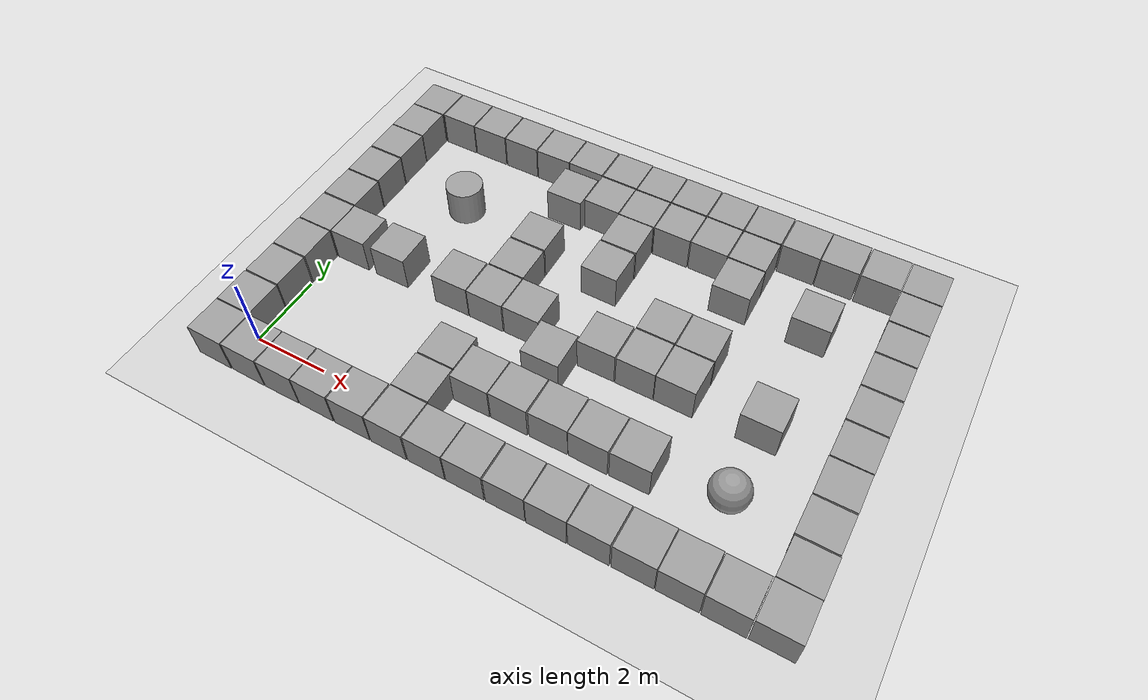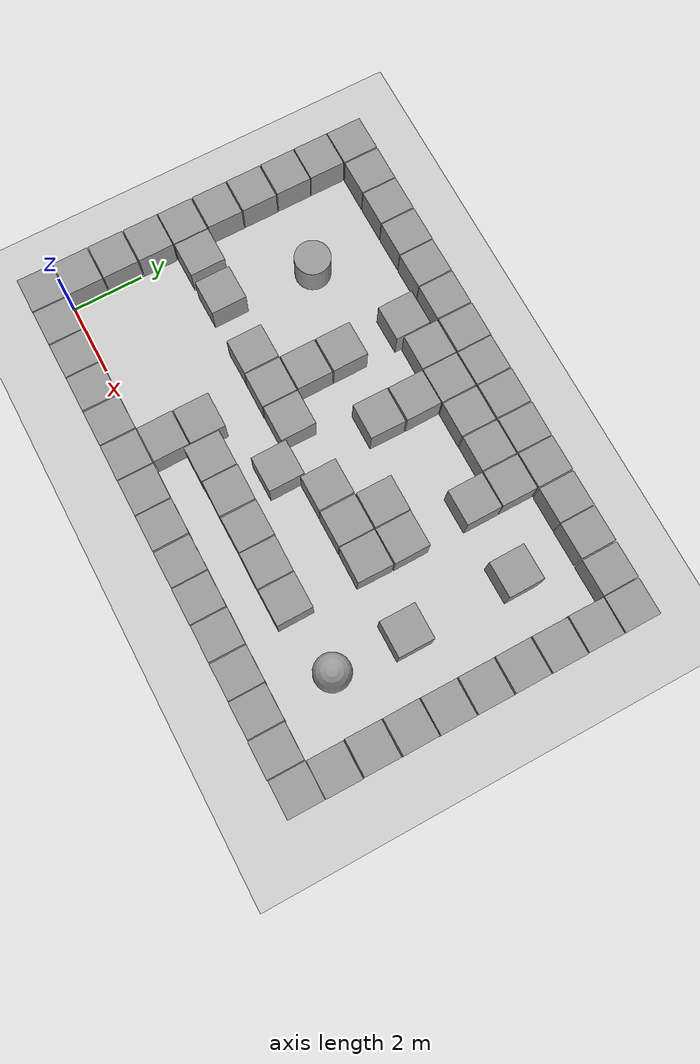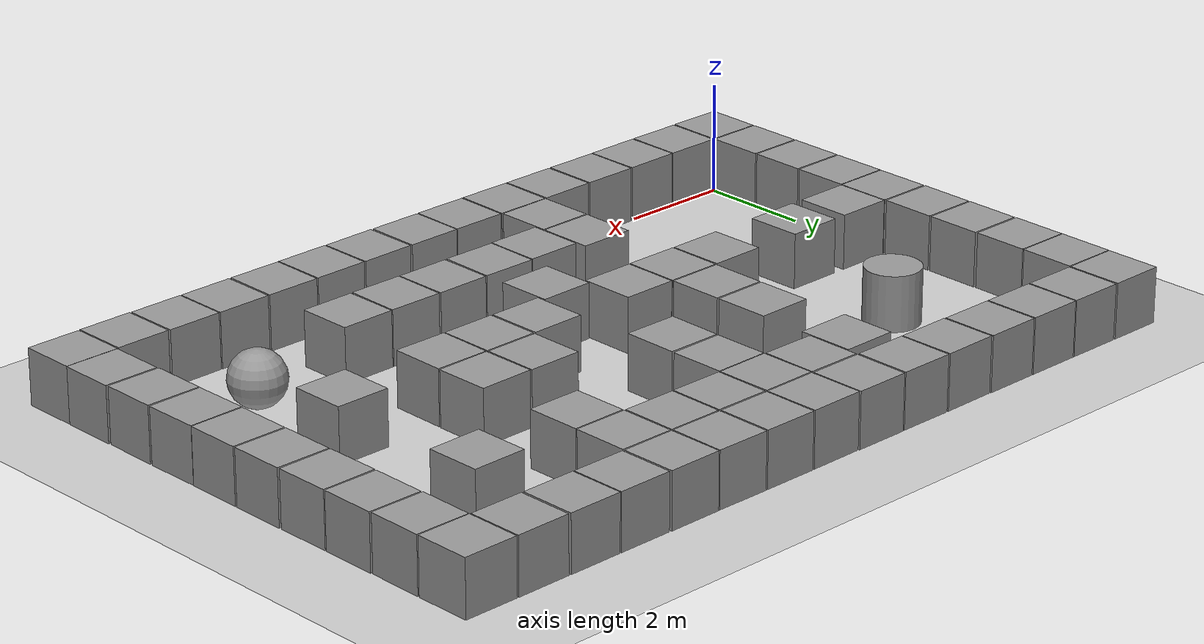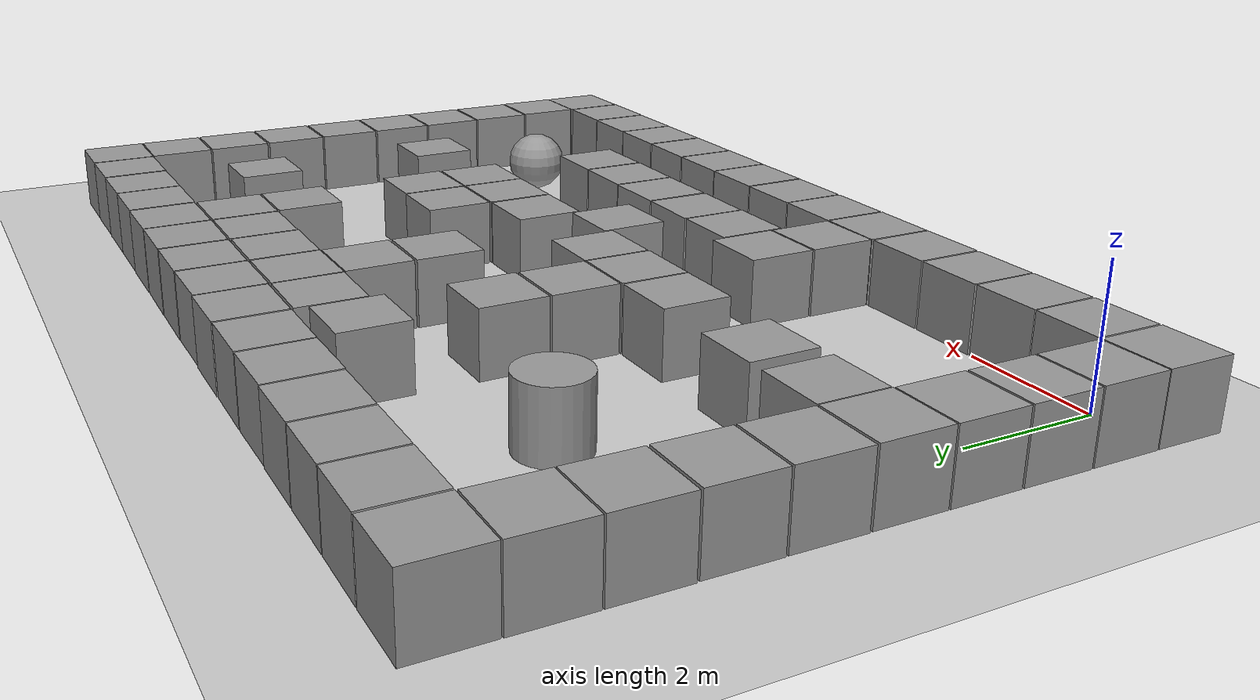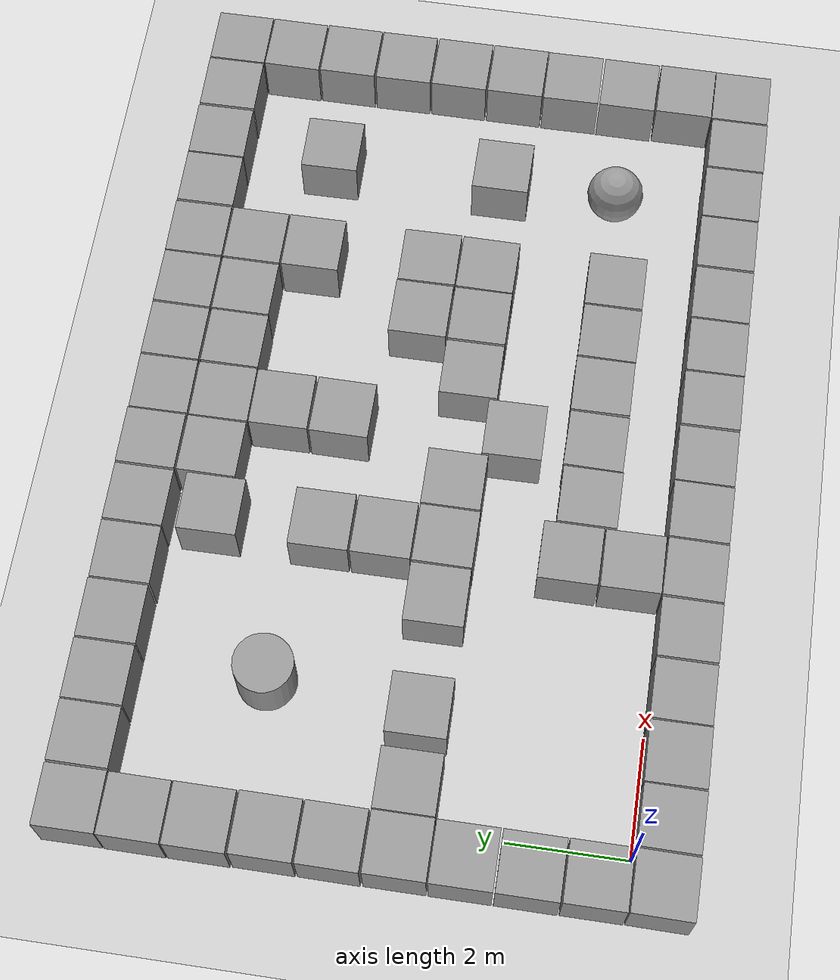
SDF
<?xml version="1.0"?>
<sdf version="1.6">
  <world name="corridor_trap">
    <include><uri>model://ground_plane</uri></include>
    <include><uri>model://sun</uri></include>
    <physics type="ode"><real_time_update_rate>1000.0</real_time_update_rate><max_step_size>0.001</max_step_size><real_time_factor>1</real_time_factor><ode><solver><type>quick</type><iters>150</iters><precon_iters>0</precon_iters><sor>1.400000</sor><use_dynamic_moi_rescaling>1</use_dynamic_moi_rescaling></solver><constraints><cfm>0.00001</cfm><erp>0.2</erp><contact_max_correcting_vel>2000.000000</contact_max_correcting_vel><contact_surface_layer>0.01000</contact_surface_layer></constraints></ode></physics>
    <scene><shadows>false</shadows></scene>
    <gui fullscreen="0"><camera name="user_camera"><pose>6.7 -5 12 0 0.95 1.5707</pose><view_controller>orbit</view_controller><projection_type>perspective</projection_type></camera></gui>
    <model name='unit_box_0'>
      <pose>-0.4945 -0.5043 0.5 0 0 -0.00998</pose>
      <link name='link'><inertial><mass>1</mass><inertia><ixx>0.166667</ixx><ixy>0</ixy><ixz>0</ixz><iyy>0.166667</iyy><iyz>0</iyz><izz>0.166667</izz></inertia></inertial>
        <collision name='collision'><geometry><box><size>1 1 1</size></box></geometry><max_contacts>10</max_contacts></collision>
        <visual name='visual'><geometry><box><size>1 1 1</size></box></geometry><material><script><uri>file://media/materials/scripts/gazebo.material</uri><name>Gazebo/Grey</name></script></material></visual>
      </link>
    </model>
    <model name='unit_box_1'>
      <pose>0.5360 -0.5038 0.5 0 0 -0.00795</pose>
      <link name='link'><inertial><mass>1</mass><inertia><ixx>0.166667</ixx><ixy>0</ixy><ixz>0</ixz><iyy>0.166667</iyy><iyz>0</iyz><izz>0.166667</izz></inertia></inertial>
        <collision name='collision'><geometry><box><size>1 1 1</size></box></geometry><max_contacts>10</max_contacts></collision>
        <visual name='visual'><geometry><box><size>1 1 1</size></box></geometry><material><script><uri>file://media/materials/scripts/gazebo.material</uri><name>Gazebo/Grey</name></script></material></visual>
      </link>
    </model>
    <model name='unit_box_2'>
      <pose>1.5618 -0.5019 0.5 0 0 0.00816</pose>
      <link name='link'><inertial><mass>1</mass><inertia><ixx>0.166667</ixx><ixy>0</ixy><ixz>0</ixz><iyy>0.166667</iyy><iyz>0</iyz><izz>0.166667</izz></inertia></inertial>
        <collision name='collision'><geometry><box><size>1 1 1</size></box></geometry><max_contacts>10</max_contacts></collision>
        <visual name='visual'><geometry><box><size>1 1 1</size></box></geometry><material><script><uri>file://media/materials/scripts/gazebo.material</uri><name>Gazebo/Grey</name></script></material></visual>
      </link>
    </model>
    <model name='unit_box_3'>
      <pose>2.5868 -0.4945 0.5 0 0 -0.00378</pose>
      <link name='link'><inertial><mass>1</mass><inertia><ixx>0.166667</ixx><ixy>0</ixy><ixz>0</ixz><iyy>0.166667</iyy><iyz>0</iyz><izz>0.166667</izz></inertia></inertial>
        <collision name='collision'><geometry><box><size>1 1 1</size></box></geometry><max_contacts>10</max_contacts></collision>
        <visual name='visual'><geometry><box><size>1 1 1</size></box></geometry><material><script><uri>file://media/materials/scripts/gazebo.material</uri><name>Gazebo/Grey</name></script></material></visual>
      </link>
    </model>
    <model name='unit_box_4'>
      <pose>3.6212 -0.4948 0.5 0 0 0.00388</pose>
      <link name='link'><inertial><mass>1</mass><inertia><ixx>0.166667</ixx><ixy>0</ixy><ixz>0</ixz><iyy>0.166667</iyy><iyz>0</iyz><izz>0.166667</izz></inertia></inertial>
        <collision name='collision'><geometry><box><size>1 1 1</size></box></geometry><max_contacts>10</max_contacts></collision>
        <visual name='visual'><geometry><box><size>1 1 1</size></box></geometry><material><script><uri>file://media/materials/scripts/gazebo.material</uri><name>Gazebo/Grey</name></script></material></visual>
      </link>
    </model>
    <model name='unit_box_5'>
      <pose>4.6551 -0.4975 0.5 0 0 -0.00946</pose>
      <link name='link'><inertial><mass>1</mass><inertia><ixx>0.166667</ixx><ixy>0</ixy><ixz>0</ixz><iyy>0.166667</iyy><iyz>0</iyz><izz>0.166667</izz></inertia></inertial>
        <collision name='collision'><geometry><box><size>1 1 1</size></box></geometry><max_contacts>10</max_contacts></collision>
        <visual name='visual'><geometry><box><size>1 1 1</size></box></geometry><material><script><uri>file://media/materials/scripts/gazebo.material</uri><name>Gazebo/Grey</name></script></material></visual>
      </link>
    </model>
    <model name='unit_box_6'>
      <pose>5.6846 -0.4989 0.5 0 0 -0.00397</pose>
      <link name='link'><inertial><mass>1</mass><inertia><ixx>0.166667</ixx><ixy>0</ixy><ixz>0</ixz><iyy>0.166667</iyy><iyz>0</iyz><izz>0.166667</izz></inertia></inertial>
        <collision name='collision'><geometry><box><size>1 1 1</size></box></geometry><max_contacts>10</max_contacts></collision>
        <visual name='visual'><geometry><box><size>1 1 1</size></box></geometry><material><script><uri>file://media/materials/scripts/gazebo.material</uri><name>Gazebo/Grey</name></script></material></visual>
      </link>
    </model>
    <model name='unit_box_7'>
      <pose>6.7063 -0.4958 0.5 0 0 0.00173</pose>
      <link name='link'><inertial><mass>1</mass><inertia><ixx>0.166667</ixx><ixy>0</ixy><ixz>0</ixz><iyy>0.166667</iyy><iyz>0</iyz><izz>0.166667</izz></inertia></inertial>
        <collision name='collision'><geometry><box><size>1 1 1</size></box></geometry><max_contacts>10</max_contacts></collision>
        <visual name='visual'><geometry><box><size>1 1 1</size></box></geometry><material><script><uri>file://media/materials/scripts/gazebo.material</uri><name>Gazebo/Grey</name></script></material></visual>
      </link>
    </model>
    <model name='unit_box_8'>
      <pose>7.7453 -0.4967 0.5 0 0 0.00966</pose>
      <link name='link'><inertial><mass>1</mass><inertia><ixx>0.166667</ixx><ixy>0</ixy><ixz>0</ixz><iyy>0.166667</iyy><iyz>0</iyz><izz>0.166667</izz></inertia></inertial>
        <collision name='collision'><geometry><box><size>1 1 1</size></box></geometry><max_contacts>10</max_contacts></collision>
        <visual name='visual'><geometry><box><size>1 1 1</size></box></geometry><material><script><uri>file://media/materials/scripts/gazebo.material</uri><name>Gazebo/Grey</name></script></material></visual>
      </link>
    </model>
    <model name='unit_box_9'>
      <pose>8.7708 -0.4976 0.5 0 0 0.00235</pose>
      <link name='link'><inertial><mass>1</mass><inertia><ixx>0.166667</ixx><ixy>0</ixy><ixz>0</ixz><iyy>0.166667</iyy><iyz>0</iyz><izz>0.166667</izz></inertia></inertial>
        <collision name='collision'><geometry><box><size>1 1 1</size></box></geometry><max_contacts>10</max_contacts></collision>
        <visual name='visual'><geometry><box><size>1 1 1</size></box></geometry><material><script><uri>file://media/materials/scripts/gazebo.material</uri><name>Gazebo/Grey</name></script></material></visual>
      </link>
    </model>
    <model name='unit_box_10'>
      <pose>9.7971 -0.4945 0.5 0 0 -0.00393</pose>
      <link name='link'><inertial><mass>1</mass><inertia><ixx>0.166667</ixx><ixy>0</ixy><ixz>0</ixz><iyy>0.166667</iyy><iyz>0</iyz><izz>0.166667</izz></inertia></inertial>
        <collision name='collision'><geometry><box><size>1 1 1</size></box></geometry><max_contacts>10</max_contacts></collision>
        <visual name='visual'><geometry><box><size>1 1 1</size></box></geometry><material><script><uri>file://media/materials/scripts/gazebo.material</uri><name>Gazebo/Grey</name></script></material></visual>
      </link>
    </model>
    <model name='unit_box_11'>
      <pose>10.8334 -0.4945 0.5 0 0 0.00316</pose>
      <link name='link'><inertial><mass>1</mass><inertia><ixx>0.166667</ixx><ixy>0</ixy><ixz>0</ixz><iyy>0.166667</iyy><iyz>0</iyz><izz>0.166667</izz></inertia></inertial>
        <collision name='collision'><geometry><box><size>1 1 1</size></box></geometry><max_contacts>10</max_contacts></collision>
        <visual name='visual'><geometry><box><size>1 1 1</size></box></geometry><material><script><uri>file://media/materials/scripts/gazebo.material</uri><name>Gazebo/Grey</name></script></material></visual>
      </link>
    </model>
    <model name='unit_box_12'>
      <pose>11.8557 -0.4961 0.5 0 0 0.00351</pose>
      <link name='link'><inertial><mass>1</mass><inertia><ixx>0.166667</ixx><ixy>0</ixy><ixz>0</ixz><iyy>0.166667</iyy><iyz>0</iyz><izz>0.166667</izz></inertia></inertial>
        <collision name='collision'><geometry><box><size>1 1 1</size></box></geometry><max_contacts>10</max_contacts></collision>
        <visual name='visual'><geometry><box><size>1 1 1</size></box></geometry><material><script><uri>file://media/materials/scripts/gazebo.material</uri><name>Gazebo/Grey</name></script></material></visual>
      </link>
    </model>
    <model name='unit_box_13'>
      <pose>12.8862 -0.5054 0.5 0 0 0.00067</pose>
      <link name='link'><inertial><mass>1</mass><inertia><ixx>0.166667</ixx><ixy>0</ixy><ixz>0</ixz><iyy>0.166667</iyy><iyz>0</iyz><izz>0.166667</izz></inertia></inertial>
        <collision name='collision'><geometry><box><size>1 1 1</size></box></geometry><max_contacts>10</max_contacts></collision>
        <visual name='visual'><geometry><box><size>1 1 1</size></box></geometry><material><script><uri>file://media/materials/scripts/gazebo.material</uri><name>Gazebo/Grey</name></script></material></visual>
      </link>
    </model>
    <model name='unit_box_14'>
      <pose>13.9144 -0.4949 0.5 0 0 0.00013</pose>
      <link name='link'><inertial><mass>1</mass><inertia><ixx>0.166667</ixx><ixy>0</ixy><ixz>0</ixz><iyy>0.166667</iyy><iyz>0</iyz><izz>0.166667</izz></inertia></inertial>
        <collision name='collision'><geometry><box><size>1 1 1</size></box></geometry><max_contacts>10</max_contacts></collision>
        <visual name='visual'><geometry><box><size>1 1 1</size></box></geometry><material><script><uri>file://media/materials/scripts/gazebo.material</uri><name>Gazebo/Grey</name></script></material></visual>
      </link>
    </model>
    <model name='unit_box_15'>
      <pose>-0.4998 8.7689 0.5 0 0 0.00337</pose>
      <link name='link'><inertial><mass>1</mass><inertia><ixx>0.166667</ixx><ixy>0</ixy><ixz>0</ixz><iyy>0.166667</iyy><iyz>0</iyz><izz>0.166667</izz></inertia></inertial>
        <collision name='collision'><geometry><box><size>1 1 1</size></box></geometry><max_contacts>10</max_contacts></collision>
        <visual name='visual'><geometry><box><size>1 1 1</size></box></geometry><material><script><uri>file://media/materials/scripts/gazebo.material</uri><name>Gazebo/Grey</name></script></material></visual>
      </link>
    </model>
    <model name='unit_box_16'>
      <pose>0.5350 8.7677 0.5 0 0 -0.00264</pose>
      <link name='link'><inertial><mass>1</mass><inertia><ixx>0.166667</ixx><ixy>0</ixy><ixz>0</ixz><iyy>0.166667</iyy><iyz>0</iyz><izz>0.166667</izz></inertia></inertial>
        <collision name='collision'><geometry><box><size>1 1 1</size></box></geometry><max_contacts>10</max_contacts></collision>
        <visual name='visual'><geometry><box><size>1 1 1</size></box></geometry><material><script><uri>file://media/materials/scripts/gazebo.material</uri><name>Gazebo/Grey</name></script></material></visual>
      </link>
    </model>
    <model name='unit_box_17'>
      <pose>1.5610 8.7676 0.5 0 0 0.00200</pose>
      <link name='link'><inertial><mass>1</mass><inertia><ixx>0.166667</ixx><ixy>0</ixy><ixz>0</ixz><iyy>0.166667</iyy><iyz>0</iyz><izz>0.166667</izz></inertia></inertial>
        <collision name='collision'><geometry><box><size>1 1 1</size></box></geometry><max_contacts>10</max_contacts></collision>
        <visual name='visual'><geometry><box><size>1 1 1</size></box></geometry><material><script><uri>file://media/materials/scripts/gazebo.material</uri><name>Gazebo/Grey</name></script></material></visual>
      </link>
    </model>
    <model name='unit_box_18'>
      <pose>2.5905 8.7692 0.5 0 0 0.00363</pose>
      <link name='link'><inertial><mass>1</mass><inertia><ixx>0.166667</ixx><ixy>0</ixy><ixz>0</ixz><iyy>0.166667</iyy><iyz>0</iyz><izz>0.166667</izz></inertia></inertial>
        <collision name='collision'><geometry><box><size>1 1 1</size></box></geometry><max_contacts>10</max_contacts></collision>
        <visual name='visual'><geometry><box><size>1 1 1</size></box></geometry><material><script><uri>file://media/materials/scripts/gazebo.material</uri><name>Gazebo/Grey</name></script></material></visual>
      </link>
    </model>
    <model name='unit_box_19'>
      <pose>3.6203 8.7651 0.5 0 0 0.01040</pose>
      <link name='link'><inertial><mass>1</mass><inertia><ixx>0.166667</ixx><ixy>0</ixy><ixz>0</ixz><iyy>0.166667</iyy><iyz>0</iyz><izz>0.166667</izz></inertia></inertial>
        <collision name='collision'><geometry><box><size>1 1 1</size></box></geometry><max_contacts>10</max_contacts></collision>
        <visual name='visual'><geometry><box><size>1 1 1</size></box></geometry><material><script><uri>file://media/materials/scripts/gazebo.material</uri><name>Gazebo/Grey</name></script></material></visual>
      </link>
    </model>
    <model name='unit_box_20'>
      <pose>4.6483 8.7692 0.5 0 0 -0.00204</pose>
      <link name='link'><inertial><mass>1</mass><inertia><ixx>0.166667</ixx><ixy>0</ixy><ixz>0</ixz><iyy>0.166667</iyy><iyz>0</iyz><izz>0.166667</izz></inertia></inertial>
        <collision name='collision'><geometry><box><size>1 1 1</size></box></geometry><max_contacts>10</max_contacts></collision>
        <visual name='visual'><geometry><box><size>1 1 1</size></box></geometry><material><script><uri>file://media/materials/scripts/gazebo.material</uri><name>Gazebo/Grey</name></script></material></visual>
      </link>
    </model>
    <model name='unit_box_21'>
      <pose>5.6852 8.7754 0.5 0 0 0.00025</pose>
      <link name='link'><inertial><mass>1</mass><inertia><ixx>0.166667</ixx><ixy>0</ixy><ixz>0</ixz><iyy>0.166667</iyy><iyz>0</iyz><izz>0.166667</izz></inertia></inertial>
        <collision name='collision'><geometry><box><size>1 1 1</size></box></geometry><max_contacts>10</max_contacts></collision>
        <visual name='visual'><geometry><box><size>1 1 1</size></box></geometry><material><script><uri>file://media/materials/scripts/gazebo.material</uri><name>Gazebo/Grey</name></script></material></visual>
      </link>
    </model>
    <model name='unit_box_22'>
      <pose>6.7088 8.7652 0.5 0 0 0.00828</pose>
      <link name='link'><inertial><mass>1</mass><inertia><ixx>0.166667</ixx><ixy>0</ixy><ixz>0</ixz><iyy>0.166667</iyy><iyz>0</iyz><izz>0.166667</izz></inertia></inertial>
        <collision name='collision'><geometry><box><size>1 1 1</size></box></geometry><max_contacts>10</max_contacts></collision>
        <visual name='visual'><geometry><box><size>1 1 1</size></box></geometry><material><script><uri>file://media/materials/scripts/gazebo.material</uri><name>Gazebo/Grey</name></script></material></visual>
      </link>
    </model>
    <model name='unit_box_23'>
      <pose>7.7361 8.7706 0.5 0 0 -0.00316</pose>
      <link name='link'><inertial><mass>1</mass><inertia><ixx>0.166667</ixx><ixy>0</ixy><ixz>0</ixz><iyy>0.166667</iyy><iyz>0</iyz><izz>0.166667</izz></inertia></inertial>
        <collision name='collision'><geometry><box><size>1 1 1</size></box></geometry><max_contacts>10</max_contacts></collision>
        <visual name='visual'><geometry><box><size>1 1 1</size></box></geometry><material><script><uri>file://media/materials/scripts/gazebo.material</uri><name>Gazebo/Grey</name></script></material></visual>
      </link>
    </model>
    <model name='unit_box_24'>
      <pose>8.7679 8.7683 0.5 0 0 -0.00647</pose>
      <link name='link'><inertial><mass>1</mass><inertia><ixx>0.166667</ixx><ixy>0</ixy><ixz>0</ixz><iyy>0.166667</iyy><iyz>0</iyz><izz>0.166667</izz></inertia></inertial>
        <collision name='collision'><geometry><box><size>1 1 1</size></box></geometry><max_contacts>10</max_contacts></collision>
        <visual name='visual'><geometry><box><size>1 1 1</size></box></geometry><material><script><uri>file://media/materials/scripts/gazebo.material</uri><name>Gazebo/Grey</name></script></material></visual>
      </link>
    </model>
    <model name='unit_box_25'>
      <pose>9.7944 8.7704 0.5 0 0 0.00620</pose>
      <link name='link'><inertial><mass>1</mass><inertia><ixx>0.166667</ixx><ixy>0</ixy><ixz>0</ixz><iyy>0.166667</iyy><iyz>0</iyz><izz>0.166667</izz></inertia></inertial>
        <collision name='collision'><geometry><box><size>1 1 1</size></box></geometry><max_contacts>10</max_contacts></collision>
        <visual name='visual'><geometry><box><size>1 1 1</size></box></geometry><material><script><uri>file://media/materials/scripts/gazebo.material</uri><name>Gazebo/Grey</name></script></material></visual>
      </link>
    </model>
    <model name='unit_box_26'>
      <pose>10.8318 8.7664 0.5 0 0 0.00406</pose>
      <link name='link'><inertial><mass>1</mass><inertia><ixx>0.166667</ixx><ixy>0</ixy><ixz>0</ixz><iyy>0.166667</iyy><iyz>0</iyz><izz>0.166667</izz></inertia></inertial>
        <collision name='collision'><geometry><box><size>1 1 1</size></box></geometry><max_contacts>10</max_contacts></collision>
        <visual name='visual'><geometry><box><size>1 1 1</size></box></geometry><material><script><uri>file://media/materials/scripts/gazebo.material</uri><name>Gazebo/Grey</name></script></material></visual>
      </link>
    </model>
    <model name='unit_box_27'>
      <pose>11.8546 8.7689 0.5 0 0 0.00687</pose>
      <link name='link'><inertial><mass>1</mass><inertia><ixx>0.166667</ixx><ixy>0</ixy><ixz>0</ixz><iyy>0.166667</iyy><iyz>0</iyz><izz>0.166667</izz></inertia></inertial>
        <collision name='collision'><geometry><box><size>1 1 1</size></box></geometry><max_contacts>10</max_contacts></collision>
        <visual name='visual'><geometry><box><size>1 1 1</size></box></geometry><material><script><uri>file://media/materials/scripts/gazebo.material</uri><name>Gazebo/Grey</name></script></material></visual>
      </link>
    </model>
    <model name='unit_box_28'>
      <pose>12.8951 8.7695 0.5 0 0 0.00726</pose>
      <link name='link'><inertial><mass>1</mass><inertia><ixx>0.166667</ixx><ixy>0</ixy><ixz>0</ixz><iyy>0.166667</iyy><iyz>0</iyz><izz>0.166667</izz></inertia></inertial>
        <collision name='collision'><geometry><box><size>1 1 1</size></box></geometry><max_contacts>10</max_contacts></collision>
        <visual name='visual'><geometry><box><size>1 1 1</size></box></geometry><material><script><uri>file://media/materials/scripts/gazebo.material</uri><name>Gazebo/Grey</name></script></material></visual>
      </link>
    </model>
    <model name='unit_box_29'>
      <pose>13.9200 8.7703 0.5 0 0 0.00177</pose>
      <link name='link'><inertial><mass>1</mass><inertia><ixx>0.166667</ixx><ixy>0</ixy><ixz>0</ixz><iyy>0.166667</iyy><iyz>0</iyz><izz>0.166667</izz></inertia></inertial>
        <collision name='collision'><geometry><box><size>1 1 1</size></box></geometry><max_contacts>10</max_contacts></collision>
        <visual name='visual'><geometry><box><size>1 1 1</size></box></geometry><material><script><uri>file://media/materials/scripts/gazebo.material</uri><name>Gazebo/Grey</name></script></material></visual>
      </link>
    </model>
    <model name='unit_box_30'>
      <pose>-0.4941 0.5229 0.5 0 0 -0.00056</pose>
      <link name='link'><inertial><mass>1</mass><inertia><ixx>0.166667</ixx><ixy>0</ixy><ixz>0</ixz><iyy>0.166667</iyy><iyz>0</iyz><izz>0.166667</izz></inertia></inertial>
        <collision name='collision'><geometry><box><size>1 1 1</size></box></geometry><max_contacts>10</max_contacts></collision>
        <visual name='visual'><geometry><box><size>1 1 1</size></box></geometry><material><script><uri>file://media/materials/scripts/gazebo.material</uri><name>Gazebo/Grey</name></script></material></visual>
      </link>
    </model>
    <model name='unit_box_31'>
      <pose>-0.4973 1.5546 0.5 0 0 -0.00306</pose>
      <link name='link'><inertial><mass>1</mass><inertia><ixx>0.166667</ixx><ixy>0</ixy><ixz>0</ixz><iyy>0.166667</iyy><iyz>0</iyz><izz>0.166667</izz></inertia></inertial>
        <collision name='collision'><geometry><box><size>1 1 1</size></box></geometry><max_contacts>10</max_contacts></collision>
        <visual name='visual'><geometry><box><size>1 1 1</size></box></geometry><material><script><uri>file://media/materials/scripts/gazebo.material</uri><name>Gazebo/Grey</name></script></material></visual>
      </link>
    </model>
    <model name='unit_box_32'>
      <pose>-0.4966 2.5896 0.5 0 0 0.00227</pose>
      <link name='link'><inertial><mass>1</mass><inertia><ixx>0.166667</ixx><ixy>0</ixy><ixz>0</ixz><iyy>0.166667</iyy><iyz>0</iyz><izz>0.166667</izz></inertia></inertial>
        <collision name='collision'><geometry><box><size>1 1 1</size></box></geometry><max_contacts>10</max_contacts></collision>
        <visual name='visual'><geometry><box><size>1 1 1</size></box></geometry><material><script><uri>file://media/materials/scripts/gazebo.material</uri><name>Gazebo/Grey</name></script></material></visual>
      </link>
    </model>
    <model name='unit_box_33'>
      <pose>-0.4947 3.6128 0.5 0 0 0.00000</pose>
      <link name='link'><inertial><mass>1</mass><inertia><ixx>0.166667</ixx><ixy>0</ixy><ixz>0</ixz><iyy>0.166667</iyy><iyz>0</iyz><izz>0.166667</izz></inertia></inertial>
        <collision name='collision'><geometry><box><size>1 1 1</size></box></geometry><max_contacts>10</max_contacts></collision>
        <visual name='visual'><geometry><box><size>1 1 1</size></box></geometry><material><script><uri>file://media/materials/scripts/gazebo.material</uri><name>Gazebo/Grey</name></script></material></visual>
      </link>
    </model>
    <model name='unit_box_34'>
      <pose>-0.4984 4.6495 0.5 0 0 -0.00688</pose>
      <link name='link'><inertial><mass>1</mass><inertia><ixx>0.166667</ixx><ixy>0</ixy><ixz>0</ixz><iyy>0.166667</iyy><iyz>0</iyz><izz>0.166667</izz></inertia></inertial>
        <collision name='collision'><geometry><box><size>1 1 1</size></box></geometry><max_contacts>10</max_contacts></collision>
        <visual name='visual'><geometry><box><size>1 1 1</size></box></geometry><material><script><uri>file://media/materials/scripts/gazebo.material</uri><name>Gazebo/Grey</name></script></material></visual>
      </link>
    </model>
    <model name='unit_box_35'>
      <pose>-0.4977 5.6835 0.5 0 0 -0.00484</pose>
      <link name='link'><inertial><mass>1</mass><inertia><ixx>0.166667</ixx><ixy>0</ixy><ixz>0</ixz><iyy>0.166667</iyy><iyz>0</iyz><izz>0.166667</izz></inertia></inertial>
        <collision name='collision'><geometry><box><size>1 1 1</size></box></geometry><max_contacts>10</max_contacts></collision>
        <visual name='visual'><geometry><box><size>1 1 1</size></box></geometry><material><script><uri>file://media/materials/scripts/gazebo.material</uri><name>Gazebo/Grey</name></script></material></visual>
      </link>
    </model>
    <model name='unit_box_36'>
      <pose>-0.5055 6.7227 0.5 0 0 -0.00309</pose>
      <link name='link'><inertial><mass>1</mass><inertia><ixx>0.166667</ixx><ixy>0</ixy><ixz>0</ixz><iyy>0.166667</iyy><iyz>0</iyz><izz>0.166667</izz></inertia></inertial>
        <collision name='collision'><geometry><box><size>1 1 1</size></box></geometry><max_contacts>10</max_contacts></collision>
        <visual name='visual'><geometry><box><size>1 1 1</size></box></geometry><material><script><uri>file://media/materials/scripts/gazebo.material</uri><name>Gazebo/Grey</name></script></material></visual>
      </link>
    </model>
    <model name='unit_box_37'>
      <pose>-0.5046 7.7466 0.5 0 0 -0.00513</pose>
      <link name='link'><inertial><mass>1</mass><inertia><ixx>0.166667</ixx><ixy>0</ixy><ixz>0</ixz><iyy>0.166667</iyy><iyz>0</iyz><izz>0.166667</izz></inertia></inertial>
        <collision name='collision'><geometry><box><size>1 1 1</size></box></geometry><max_contacts>10</max_contacts></collision>
        <visual name='visual'><geometry><box><size>1 1 1</size></box></geometry><material><script><uri>file://media/materials/scripts/gazebo.material</uri><name>Gazebo/Grey</name></script></material></visual>
      </link>
    </model>
    <model name='unit_box_38'>
      <pose>13.9244 0.5162 0.5 0 0 -0.00468</pose>
      <link name='link'><inertial><mass>1</mass><inertia><ixx>0.166667</ixx><ixy>0</ixy><ixz>0</ixz><iyy>0.166667</iyy><iyz>0</iyz><izz>0.166667</izz></inertia></inertial>
        <collision name='collision'><geometry><box><size>1 1 1</size></box></geometry><max_contacts>10</max_contacts></collision>
        <visual name='visual'><geometry><box><size>1 1 1</size></box></geometry><material><script><uri>file://media/materials/scripts/gazebo.material</uri><name>Gazebo/Grey</name></script></material></visual>
      </link>
    </model>
    <model name='unit_box_39'>
      <pose>13.9152 1.5525 0.5 0 0 -0.00612</pose>
      <link name='link'><inertial><mass>1</mass><inertia><ixx>0.166667</ixx><ixy>0</ixy><ixz>0</ixz><iyy>0.166667</iyy><iyz>0</iyz><izz>0.166667</izz></inertia></inertial>
        <collision name='collision'><geometry><box><size>1 1 1</size></box></geometry><max_contacts>10</max_contacts></collision>
        <visual name='visual'><geometry><box><size>1 1 1</size></box></geometry><material><script><uri>file://media/materials/scripts/gazebo.material</uri><name>Gazebo/Grey</name></script></material></visual>
      </link>
    </model>
    <model name='unit_box_40'>
      <pose>13.9181 2.5885 0.5 0 0 0.00890</pose>
      <link name='link'><inertial><mass>1</mass><inertia><ixx>0.166667</ixx><ixy>0</ixy><ixz>0</ixz><iyy>0.166667</iyy><iyz>0</iyz><izz>0.166667</izz></inertia></inertial>
        <collision name='collision'><geometry><box><size>1 1 1</size></box></geometry><max_contacts>10</max_contacts></collision>
        <visual name='visual'><geometry><box><size>1 1 1</size></box></geometry><material><script><uri>file://media/materials/scripts/gazebo.material</uri><name>Gazebo/Grey</name></script></material></visual>
      </link>
    </model>
    <model name='unit_box_41'>
      <pose>13.9240 3.6130 0.5 0 0 -0.00256</pose>
      <link name='link'><inertial><mass>1</mass><inertia><ixx>0.166667</ixx><ixy>0</ixy><ixz>0</ixz><iyy>0.166667</iyy><iyz>0</iyz><izz>0.166667</izz></inertia></inertial>
        <collision name='collision'><geometry><box><size>1 1 1</size></box></geometry><max_contacts>10</max_contacts></collision>
        <visual name='visual'><geometry><box><size>1 1 1</size></box></geometry><material><script><uri>file://media/materials/scripts/gazebo.material</uri><name>Gazebo/Grey</name></script></material></visual>
      </link>
    </model>
    <model name='unit_box_42'>
      <pose>13.9242 4.6458 0.5 0 0 -0.00622</pose>
      <link name='link'><inertial><mass>1</mass><inertia><ixx>0.166667</ixx><ixy>0</ixy><ixz>0</ixz><iyy>0.166667</iyy><iyz>0</iyz><izz>0.166667</izz></inertia></inertial>
        <collision name='collision'><geometry><box><size>1 1 1</size></box></geometry><max_contacts>10</max_contacts></collision>
        <visual name='visual'><geometry><box><size>1 1 1</size></box></geometry><material><script><uri>file://media/materials/scripts/gazebo.material</uri><name>Gazebo/Grey</name></script></material></visual>
      </link>
    </model>
    <model name='unit_box_43'>
      <pose>13.9199 5.6829 0.5 0 0 0.00524</pose>
      <link name='link'><inertial><mass>1</mass><inertia><ixx>0.166667</ixx><ixy>0</ixy><ixz>0</ixz><iyy>0.166667</iyy><iyz>0</iyz><izz>0.166667</izz></inertia></inertial>
        <collision name='collision'><geometry><box><size>1 1 1</size></box></geometry><max_contacts>10</max_contacts></collision>
        <visual name='visual'><geometry><box><size>1 1 1</size></box></geometry><material><script><uri>file://media/materials/scripts/gazebo.material</uri><name>Gazebo/Grey</name></script></material></visual>
      </link>
    </model>
    <model name='unit_box_44'>
      <pose>13.9226 6.7167 0.5 0 0 -0.00526</pose>
      <link name='link'><inertial><mass>1</mass><inertia><ixx>0.166667</ixx><ixy>0</ixy><ixz>0</ixz><iyy>0.166667</iyy><iyz>0</iyz><izz>0.166667</izz></inertia></inertial>
        <collision name='collision'><geometry><box><size>1 1 1</size></box></geometry><max_contacts>10</max_contacts></collision>
        <visual name='visual'><geometry><box><size>1 1 1</size></box></geometry><material><script><uri>file://media/materials/scripts/gazebo.material</uri><name>Gazebo/Grey</name></script></material></visual>
      </link>
    </model>
    <model name='unit_box_45'>
      <pose>13.9168 7.7472 0.5 0 0 -0.00911</pose>
      <link name='link'><inertial><mass>1</mass><inertia><ixx>0.166667</ixx><ixy>0</ixy><ixz>0</ixz><iyy>0.166667</iyy><iyz>0</iyz><izz>0.166667</izz></inertia></inertial>
        <collision name='collision'><geometry><box><size>1 1 1</size></box></geometry><max_contacts>10</max_contacts></collision>
        <visual name='visual'><geometry><box><size>1 1 1</size></box></geometry><material><script><uri>file://media/materials/scripts/gazebo.material</uri><name>Gazebo/Grey</name></script></material></visual>
      </link>
    </model>
    <model name='unit_box_46'>
      <pose>4.6520 0.5259 0.5 0 0 0.00816</pose>
      <link name='link'><inertial><mass>1</mass><inertia><ixx>0.166667</ixx><ixy>0</ixy><ixz>0</ixz><iyy>0.166667</iyy><iyz>0</iyz><izz>0.166667</izz></inertia></inertial>
        <collision name='collision'><geometry><box><size>1 1 1</size></box></geometry><max_contacts>10</max_contacts></collision>
        <visual name='visual'><geometry><box><size>1 1 1</size></box></geometry><material><script><uri>file://media/materials/scripts/gazebo.material</uri><name>Gazebo/Grey</name></script></material></visual>
      </link>
    </model>
    <model name='unit_box_47'>
      <pose>4.6518 1.5547 0.5 0 0 -0.00003</pose>
      <link name='link'><inertial><mass>1</mass><inertia><ixx>0.166667</ixx><ixy>0</ixy><ixz>0</ixz><iyy>0.166667</iyy><iyz>0</iyz><izz>0.166667</izz></inertia></inertial>
        <collision name='collision'><geometry><box><size>1 1 1</size></box></geometry><max_contacts>10</max_contacts></collision>
        <visual name='visual'><geometry><box><size>1 1 1</size></box></geometry><material><script><uri>file://media/materials/scripts/gazebo.material</uri><name>Gazebo/Grey</name></script></material></visual>
      </link>
    </model>
    <model name='unit_box_48'>
      <pose>5.6812 1.3545 0.5 0 0 -0.00028</pose>
      <link name='link'><inertial><mass>1</mass><inertia><ixx>0.166667</ixx><ixy>0</ixy><ixz>0</ixz><iyy>0.166667</iyy><iyz>0</iyz><izz>0.166667</izz></inertia></inertial>
        <collision name='collision'><geometry><box><size>1 1 1</size></box></geometry><max_contacts>10</max_contacts></collision>
        <visual name='visual'><geometry><box><size>1 1 1</size></box></geometry><material><script><uri>file://media/materials/scripts/gazebo.material</uri><name>Gazebo/Grey</name></script></material></visual>
      </link>
    </model>
    <model name='unit_box_49'>
      <pose>6.7044 1.3632 0.5 0 0 -0.01039</pose>
      <link name='link'><inertial><mass>1</mass><inertia><ixx>0.166667</ixx><ixy>0</ixy><ixz>0</ixz><iyy>0.166667</iyy><iyz>0</iyz><izz>0.166667</izz></inertia></inertial>
        <collision name='collision'><geometry><box><size>1 1 1</size></box></geometry><max_contacts>10</max_contacts></collision>
        <visual name='visual'><geometry><box><size>1 1 1</size></box></geometry><material><script><uri>file://media/materials/scripts/gazebo.material</uri><name>Gazebo/Grey</name></script></material></visual>
      </link>
    </model>
    <model name='unit_box_50'>
      <pose>7.7416 1.3658 0.5 0 0 0.00725</pose>
      <link name='link'><inertial><mass>1</mass><inertia><ixx>0.166667</ixx><ixy>0</ixy><ixz>0</ixz><iyy>0.166667</iyy><iyz>0</iyz><izz>0.166667</izz></inertia></inertial>
        <collision name='collision'><geometry><box><size>1 1 1</size></box></geometry><max_contacts>10</max_contacts></collision>
        <visual name='visual'><geometry><box><size>1 1 1</size></box></geometry><material><script><uri>file://media/materials/scripts/gazebo.material</uri><name>Gazebo/Grey</name></script></material></visual>
      </link>
    </model>
    <model name='unit_box_51'>
      <pose>8.7668 1.3604 0.5 0 0 -0.00754</pose>
      <link name='link'><inertial><mass>1</mass><inertia><ixx>0.166667</ixx><ixy>0</ixy><ixz>0</ixz><iyy>0.166667</iyy><iyz>0</iyz><izz>0.166667</izz></inertia></inertial>
        <collision name='collision'><geometry><box><size>1 1 1</size></box></geometry><max_contacts>10</max_contacts></collision>
        <visual name='visual'><geometry><box><size>1 1 1</size></box></geometry><material><script><uri>file://media/materials/scripts/gazebo.material</uri><name>Gazebo/Grey</name></script></material></visual>
      </link>
    </model>
    <model name='unit_box_52'>
      <pose>9.7981 1.3644 0.5 0 0 0.00665</pose>
      <link name='link'><inertial><mass>1</mass><inertia><ixx>0.166667</ixx><ixy>0</ixy><ixz>0</ixz><iyy>0.166667</iyy><iyz>0</iyz><izz>0.166667</izz></inertia></inertial>
        <collision name='collision'><geometry><box><size>1 1 1</size></box></geometry><max_contacts>10</max_contacts></collision>
        <visual name='visual'><geometry><box><size>1 1 1</size></box></geometry><material><script><uri>file://media/materials/scripts/gazebo.material</uri><name>Gazebo/Grey</name></script></material></visual>
      </link>
    </model>
    <model name='unit_box_53'>
      <pose>0.5241 3.6186 0.5 0 0 0.00294</pose>
      <link name='link'><inertial><mass>1</mass><inertia><ixx>0.166667</ixx><ixy>0</ixy><ixz>0</ixz><iyy>0.166667</iyy><iyz>0</iyz><izz>0.166667</izz></inertia></inertial>
        <collision name='collision'><geometry><box><size>1 1 1</size></box></geometry><max_contacts>10</max_contacts></collision>
        <visual name='visual'><geometry><box><size>1 1 1</size></box></geometry><material><script><uri>file://media/materials/scripts/gazebo.material</uri><name>Gazebo/Grey</name></script></material></visual>
      </link>
    </model>
    <model name='unit_box_54'>
      <pose>1.7561 3.6236 0.5 0 0 0.00823</pose>
      <link name='link'><inertial><mass>1</mass><inertia><ixx>0.166667</ixx><ixy>0</ixy><ixz>0</ixz><iyy>0.166667</iyy><iyz>0</iyz><izz>0.166667</izz></inertia></inertial>
        <collision name='collision'><geometry><box><size>1 1 1</size></box></geometry><max_contacts>10</max_contacts></collision>
        <visual name='visual'><geometry><box><size>1 1 1</size></box></geometry><material><script><uri>file://media/materials/scripts/gazebo.material</uri><name>Gazebo/Grey</name></script></material></visual>
      </link>
    </model>
    <model name='unit_box_55'>
      <pose>3.6206 3.6183 0.5 0 0 0.00730</pose>
      <link name='link'><inertial><mass>1</mass><inertia><ixx>0.166667</ixx><ixy>0</ixy><ixz>0</ixz><iyy>0.166667</iyy><iyz>0</iyz><izz>0.166667</izz></inertia></inertial>
        <collision name='collision'><geometry><box><size>1 1 1</size></box></geometry><max_contacts>10</max_contacts></collision>
        <visual name='visual'><geometry><box><size>1 1 1</size></box></geometry><material><script><uri>file://media/materials/scripts/gazebo.material</uri><name>Gazebo/Grey</name></script></material></visual>
      </link>
    </model>
    <model name='unit_box_56'>
      <pose>4.6502 3.6163 0.5 0 0 -0.00465</pose>
      <link name='link'><inertial><mass>1</mass><inertia><ixx>0.166667</ixx><ixy>0</ixy><ixz>0</ixz><iyy>0.166667</iyy><iyz>0</iyz><izz>0.166667</izz></inertia></inertial>
        <collision name='collision'><geometry><box><size>1 1 1</size></box></geometry><max_contacts>10</max_contacts></collision>
        <visual name='visual'><geometry><box><size>1 1 1</size></box></geometry><material><script><uri>file://media/materials/scripts/gazebo.material</uri><name>Gazebo/Grey</name></script></material></visual>
      </link>
    </model>
    <model name='unit_box_57'>
      <pose>5.6759 3.6241 0.5 0 0 0.00021</pose>
      <link name='link'><inertial><mass>1</mass><inertia><ixx>0.166667</ixx><ixy>0</ixy><ixz>0</ixz><iyy>0.166667</iyy><iyz>0</iyz><izz>0.166667</izz></inertia></inertial>
        <collision name='collision'><geometry><box><size>1 1 1</size></box></geometry><max_contacts>10</max_contacts></collision>
        <visual name='visual'><geometry><box><size>1 1 1</size></box></geometry><material><script><uri>file://media/materials/scripts/gazebo.material</uri><name>Gazebo/Grey</name></script></material></visual>
      </link>
    </model>
    <model name='unit_box_58'>
      <pose>6.7124 2.7438 0.5 0 0 0.00992</pose>
      <link name='link'><inertial><mass>1</mass><inertia><ixx>0.166667</ixx><ixy>0</ixy><ixz>0</ixz><iyy>0.166667</iyy><iyz>0</iyz><izz>0.166667</izz></inertia></inertial>
        <collision name='collision'><geometry><box><size>1 1 1</size></box></geometry><max_contacts>10</max_contacts></collision>
        <visual name='visual'><geometry><box><size>1 1 1</size></box></geometry><material><script><uri>file://media/materials/scripts/gazebo.material</uri><name>Gazebo/Grey</name></script></material></visual>
      </link>
    </model>
    <model name='unit_box_59'>
      <pose>7.7363 3.6189 0.5 0 0 0.00784</pose>
      <link name='link'><inertial><mass>1</mass><inertia><ixx>0.166667</ixx><ixy>0</ixy><ixz>0</ixz><iyy>0.166667</iyy><iyz>0</iyz><izz>0.166667</izz></inertia></inertial>
        <collision name='collision'><geometry><box><size>1 1 1</size></box></geometry><max_contacts>10</max_contacts></collision>
        <visual name='visual'><geometry><box><size>1 1 1</size></box></geometry><material><script><uri>file://media/materials/scripts/gazebo.material</uri><name>Gazebo/Grey</name></script></material></visual>
      </link>
    </model>
    <model name='unit_box_60'>
      <pose>8.7731 3.6186 0.5 0 0 0.00326</pose>
      <link name='link'><inertial><mass>1</mass><inertia><ixx>0.166667</ixx><ixy>0</ixy><ixz>0</ixz><iyy>0.166667</iyy><iyz>0</iyz><izz>0.166667</izz></inertia></inertial>
        <collision name='collision'><geometry><box><size>1 1 1</size></box></geometry><max_contacts>10</max_contacts></collision>
        <visual name='visual'><geometry><box><size>1 1 1</size></box></geometry><material><script><uri>file://media/materials/scripts/gazebo.material</uri><name>Gazebo/Grey</name></script></material></visual>
      </link>
    </model>
    <model name='unit_box_61'>
      <pose>9.7963 3.6159 0.5 0 0 -0.00941</pose>
      <link name='link'><inertial><mass>1</mass><inertia><ixx>0.166667</ixx><ixy>0</ixy><ixz>0</ixz><iyy>0.166667</iyy><iyz>0</iyz><izz>0.166667</izz></inertia></inertial>
        <collision name='collision'><geometry><box><size>1 1 1</size></box></geometry><max_contacts>10</max_contacts></collision>
        <visual name='visual'><geometry><box><size>1 1 1</size></box></geometry><material><script><uri>file://media/materials/scripts/gazebo.material</uri><name>Gazebo/Grey</name></script></material></visual>
      </link>
    </model>
    <model name='unit_box_62'>
      <pose>11.8586 3.6168 0.5 0 0 0.00037</pose>
      <link name='link'><inertial><mass>1</mass><inertia><ixx>0.166667</ixx><ixy>0</ixy><ixz>0</ixz><iyy>0.166667</iyy><iyz>0</iyz><izz>0.166667</izz></inertia></inertial>
        <collision name='collision'><geometry><box><size>1 1 1</size></box></geometry><max_contacts>10</max_contacts></collision>
        <visual name='visual'><geometry><box><size>1 1 1</size></box></geometry><material><script><uri>file://media/materials/scripts/gazebo.material</uri><name>Gazebo/Grey</name></script></material></visual>
      </link>
    </model>
    <model name='unit_box_63'>
      <pose>4.6556 4.6458 0.5 0 0 0.00121</pose>
      <link name='link'><inertial><mass>1</mass><inertia><ixx>0.166667</ixx><ixy>0</ixy><ixz>0</ixz><iyy>0.166667</iyy><iyz>0</iyz><izz>0.166667</izz></inertia></inertial>
        <collision name='collision'><geometry><box><size>1 1 1</size></box></geometry><max_contacts>10</max_contacts></collision>
        <visual name='visual'><geometry><box><size>1 1 1</size></box></geometry><material><script><uri>file://media/materials/scripts/gazebo.material</uri><name>Gazebo/Grey</name></script></material></visual>
      </link>
    </model>
    <model name='unit_box_64'>
      <pose>8.7744 4.6512 0.5 0 0 0.00057</pose>
      <link name='link'><inertial><mass>1</mass><inertia><ixx>0.166667</ixx><ixy>0</ixy><ixz>0</ixz><iyy>0.166667</iyy><iyz>0</iyz><izz>0.166667</izz></inertia></inertial>
        <collision name='collision'><geometry><box><size>1 1 1</size></box></geometry><max_contacts>10</max_contacts></collision>
        <visual name='visual'><geometry><box><size>1 1 1</size></box></geometry><material><script><uri>file://media/materials/scripts/gazebo.material</uri><name>Gazebo/Grey</name></script></material></visual>
      </link>
    </model>
    <model name='unit_box_65'>
      <pose>9.8032 4.6443 0.5 0 0 0.00939</pose>
      <link name='link'><inertial><mass>1</mass><inertia><ixx>0.166667</ixx><ixy>0</ixy><ixz>0</ixz><iyy>0.166667</iyy><iyz>0</iyz><izz>0.166667</izz></inertia></inertial>
        <collision name='collision'><geometry><box><size>1 1 1</size></box></geometry><max_contacts>10</max_contacts></collision>
        <visual name='visual'><geometry><box><size>1 1 1</size></box></geometry><material><script><uri>file://media/materials/scripts/gazebo.material</uri><name>Gazebo/Grey</name></script></material></visual>
      </link>
    </model>
    <model name='unit_box_66'>
      <pose>4.6522 5.6837 0.5 0 0 0.00681</pose>
      <link name='link'><inertial><mass>1</mass><inertia><ixx>0.166667</ixx><ixy>0</ixy><ixz>0</ixz><iyy>0.166667</iyy><iyz>0</iyz><izz>0.166667</izz></inertia></inertial>
        <collision name='collision'><geometry><box><size>1 1 1</size></box></geometry><max_contacts>10</max_contacts></collision>
        <visual name='visual'><geometry><box><size>1 1 1</size></box></geometry><material><script><uri>file://media/materials/scripts/gazebo.material</uri><name>Gazebo/Grey</name></script></material></visual>
      </link>
    </model>
    <model name='unit_box_67'>
      <pose>6.7052 5.6748 0.5 0 0 -0.00674</pose>
      <link name='link'><inertial><mass>1</mass><inertia><ixx>0.166667</ixx><ixy>0</ixy><ixz>0</ixz><iyy>0.166667</iyy><iyz>0</iyz><izz>0.166667</izz></inertia></inertial>
        <collision name='collision'><geometry><box><size>1 1 1</size></box></geometry><max_contacts>10</max_contacts></collision>
        <visual name='visual'><geometry><box><size>1 1 1</size></box></geometry><material><script><uri>file://media/materials/scripts/gazebo.material</uri><name>Gazebo/Grey</name></script></material></visual>
      </link>
    </model>
    <model name='unit_box_68'>
      <pose>6.7101 6.7153 0.5 0 0 0.00857</pose>
      <link name='link'><inertial><mass>1</mass><inertia><ixx>0.166667</ixx><ixy>0</ixy><ixz>0</ixz><iyy>0.166667</iyy><iyz>0</iyz><izz>0.166667</izz></inertia></inertial>
        <collision name='collision'><geometry><box><size>1 1 1</size></box></geometry><max_contacts>10</max_contacts></collision>
        <visual name='visual'><geometry><box><size>1 1 1</size></box></geometry><material><script><uri>file://media/materials/scripts/gazebo.material</uri><name>Gazebo/Grey</name></script></material></visual>
      </link>
    </model>
    <model name='unit_box_69'>
      <pose>9.7989 6.7115 0.5 0 0 0.00502</pose>
      <link name='link'><inertial><mass>1</mass><inertia><ixx>0.166667</ixx><ixy>0</ixy><ixz>0</ixz><iyy>0.166667</iyy><iyz>0</iyz><izz>0.166667</izz></inertia></inertial>
        <collision name='collision'><geometry><box><size>1 1 1</size></box></geometry><max_contacts>10</max_contacts></collision>
        <visual name='visual'><geometry><box><size>1 1 1</size></box></geometry><material><script><uri>file://media/materials/scripts/gazebo.material</uri><name>Gazebo/Grey</name></script></material></visual>
      </link>
    </model>
    <model name='unit_box_70'>
      <pose>11.8580 6.7156 0.5 0 0 0.00925</pose>
      <link name='link'><inertial><mass>1</mass><inertia><ixx>0.166667</ixx><ixy>0</ixy><ixz>0</ixz><iyy>0.166667</iyy><iyz>0</iyz><izz>0.166667</izz></inertia></inertial>
        <collision name='collision'><geometry><box><size>1 1 1</size></box></geometry><max_contacts>10</max_contacts></collision>
        <visual name='visual'><geometry><box><size>1 1 1</size></box></geometry><material><script><uri>file://media/materials/scripts/gazebo.material</uri><name>Gazebo/Grey</name></script></material></visual>
      </link>
    </model>
    <model name='unit_box_71'>
      <pose>4.6527 7.5448 0.5 0 0 0.00630</pose>
      <link name='link'><inertial><mass>1</mass><inertia><ixx>0.166667</ixx><ixy>0</ixy><ixz>0</ixz><iyy>0.166667</iyy><iyz>0</iyz><izz>0.166667</izz></inertia></inertial>
        <collision name='collision'><geometry><box><size>1 1 1</size></box></geometry><max_contacts>10</max_contacts></collision>
        <visual name='visual'><geometry><box><size>1 1 1</size></box></geometry><material><script><uri>file://media/materials/scripts/gazebo.material</uri><name>Gazebo/Grey</name></script></material></visual>
      </link>
    </model>
    <model name='unit_box_72'>
      <pose>5.6818 7.7379 0.5 0 0 -0.00458</pose>
      <link name='link'><inertial><mass>1</mass><inertia><ixx>0.166667</ixx><ixy>0</ixy><ixz>0</ixz><iyy>0.166667</iyy><iyz>0</iyz><izz>0.166667</izz></inertia></inertial>
        <collision name='collision'><geometry><box><size>1 1 1</size></box></geometry><max_contacts>10</max_contacts></collision>
        <visual name='visual'><geometry><box><size>1 1 1</size></box></geometry><material><script><uri>file://media/materials/scripts/gazebo.material</uri><name>Gazebo/Grey</name></script></material></visual>
      </link>
    </model>
    <model name='unit_box_73'>
      <pose>6.7069 7.7347 0.5 0 0 0.00892</pose>
      <link name='link'><inertial><mass>1</mass><inertia><ixx>0.166667</ixx><ixy>0</ixy><ixz>0</ixz><iyy>0.166667</iyy><iyz>0</iyz><izz>0.166667</izz></inertia></inertial>
        <collision name='collision'><geometry><box><size>1 1 1</size></box></geometry><max_contacts>10</max_contacts></collision>
        <visual name='visual'><geometry><box><size>1 1 1</size></box></geometry><material><script><uri>file://media/materials/scripts/gazebo.material</uri><name>Gazebo/Grey</name></script></material></visual>
      </link>
    </model>
    <model name='unit_box_74'>
      <pose>7.7376 7.7343 0.5 0 0 -0.00385</pose>
      <link name='link'><inertial><mass>1</mass><inertia><ixx>0.166667</ixx><ixy>0</ixy><ixz>0</ixz><iyy>0.166667</iyy><iyz>0</iyz><izz>0.166667</izz></inertia></inertial>
        <collision name='collision'><geometry><box><size>1 1 1</size></box></geometry><max_contacts>10</max_contacts></collision>
        <visual name='visual'><geometry><box><size>1 1 1</size></box></geometry><material><script><uri>file://media/materials/scripts/gazebo.material</uri><name>Gazebo/Grey</name></script></material></visual>
      </link>
    </model>
    <model name='unit_box_75'>
      <pose>8.7652 7.7393 0.5 0 0 -0.00351</pose>
      <link name='link'><inertial><mass>1</mass><inertia><ixx>0.166667</ixx><ixy>0</ixy><ixz>0</ixz><iyy>0.166667</iyy><iyz>0</iyz><izz>0.166667</izz></inertia></inertial>
        <collision name='collision'><geometry><box><size>1 1 1</size></box></geometry><max_contacts>10</max_contacts></collision>
        <visual name='visual'><geometry><box><size>1 1 1</size></box></geometry><material><script><uri>file://media/materials/scripts/gazebo.material</uri><name>Gazebo/Grey</name></script></material></visual>
      </link>
    </model>
    <model name='unit_box_76'>
      <pose>9.7961 7.7397 0.5 0 0 -0.00178</pose>
      <link name='link'><inertial><mass>1</mass><inertia><ixx>0.166667</ixx><ixy>0</ixy><ixz>0</ixz><iyy>0.166667</iyy><iyz>0</iyz><izz>0.166667</izz></inertia></inertial>
        <collision name='collision'><geometry><box><size>1 1 1</size></box></geometry><max_contacts>10</max_contacts></collision>
        <visual name='visual'><geometry><box><size>1 1 1</size></box></geometry><material><script><uri>file://media/materials/scripts/gazebo.material</uri><name>Gazebo/Grey</name></script></material></visual>
      </link>
    </model>
    <model name='unit_sphere_0'>
      <pose>11.8600 1.5600 0.5 0 0 0.00000</pose>
      <link name='link'><inertial><mass>1</mass><inertia><ixx>0.166667</ixx><ixy>0</ixy><ixz>0</ixz><iyy>0.166667</iyy><iyz>0</iyz><izz>0.166667</izz></inertia></inertial>
        <collision name='collision'><geometry><sphere><radius>0.5</radius></sphere></geometry><max_contacts>10</max_contacts></collision>
        <visual name='visual'><geometry><sphere><radius>0.5</radius></sphere></geometry><material><script><uri>file://media/materials/scripts/gazebo.material</uri><name>Gazebo/Grey</name></script></material></visual>
      </link>
    </model>
    <model name='unit_cylinder_0'>
      <pose>2.0750 6.1950 0.5 0 0 0.00000</pose>
      <link name='link'><inertial><mass>1</mass><inertia><ixx>0.166667</ixx><ixy>0</ixy><ixz>0</ixz><iyy>0.166667</iyy><iyz>0</iyz><izz>0.166667</izz></inertia></inertial>
        <collision name='collision'><geometry><cylinder><radius>0.5</radius><length>1</length></cylinder></geometry><max_contacts>10</max_contacts></collision>
        <visual name='visual'><geometry><cylinder><radius>0.5</radius><length>1</length></cylinder></geometry><material><script><uri>file://media/materials/scripts/gazebo.material</uri><name>Gazebo/Grey</name></script></material></visual>
      </link>
    </model>
  </world>
</sdf>
